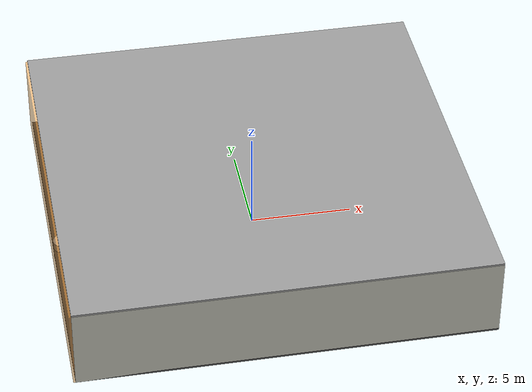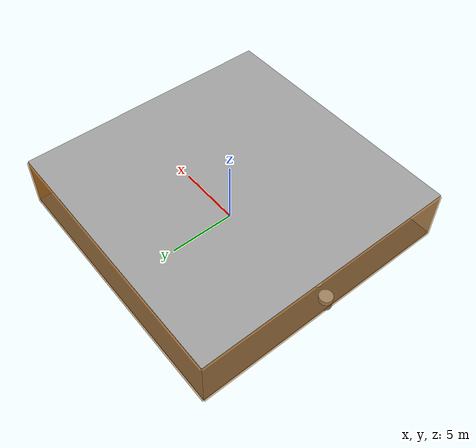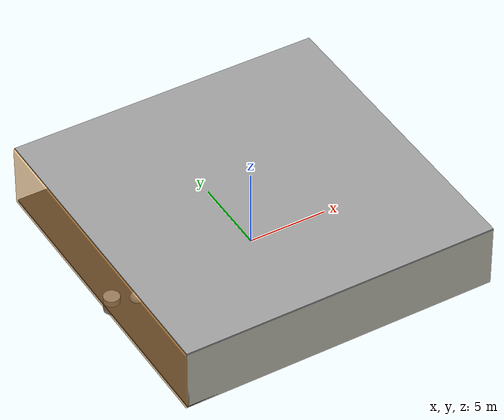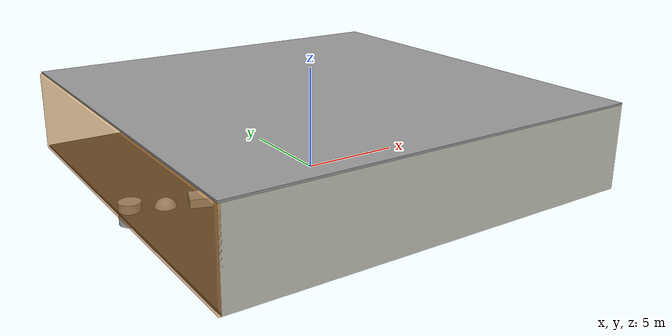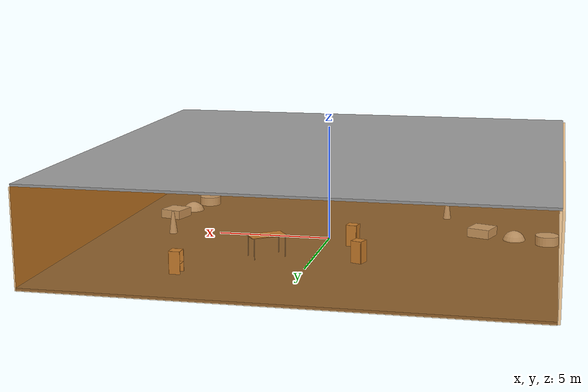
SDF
<sdf version="1.4">
 <world name="default">
  <physics type="ode">
   <max_step_size>0.001</max_step_size>
   <real_time_factor>1</real_time_factor>
   <real_time_update_rate>1000</real_time_update_rate>
   <gravity>0 0 -9.8</gravity>
  </physics>
  <scene><ambient>0.4 0.4 0.4 1</ambient><background>0.7 0.7 0.7 1</background><shadows>1</shadows></scene>
  <model name="Surrounding">
   <static>1</static>
   <link name="Ceiling">
    <collision name="Ceiling_Collision"><geometry><box><size>20 20 0.1</size></box></geometry></collision>
    <visual name="Ceiling_Visual">
     <geometry><box><size>20 20 0.1</size></box></geometry>
     <material>
      <script><uri>file://media/materials/scripts/gazebo.material</uri><name>Gazebo/GreyGradientSky</name></script>
     </material>
    </visual>
    <pose>0 0 4.05 0 0 0</pose>
   </link>
   <link name="Wall_South">
    <collision name="Wall_South_Collision">
     <geometry><box><size>20 0 4</size></box></geometry>
     <pose>0 0 2 0 -0 0</pose>
    </collision>
    <visual name="Wall_South_Visual">
     <pose>0 0 2 0 -0 0</pose>
     <geometry><box><size>20 0 4</size></box></geometry>
     <material>
      <script><uri>file://media/materials/scripts/gazebo.material</uri><name>Gazebo/PaintedWall</name></script>
     </material>
    </visual>
    <velocity_decay><linear>0</linear><angular>0</angular></velocity_decay>
    <pose>0 -10 0 0 -0 0</pose>
   </link>
   <link name="Wall_East">
    <collision name="Wall_21_Collision">
     <geometry><box><size>20 0 4</size></box></geometry>
     <pose>0 0 2 0 -0 0</pose>
    </collision>
    <visual name="Wall_21_Visual">
     <pose>0 0 2 0 -0 0</pose>
     <geometry><box><size>20 0 4</size></box></geometry>
     <material>
      <script><uri>file://media/materials/scripts/gazebo.material</uri><name>Gazebo/WoodFloor</name></script>
     </material>
    </visual>
    <velocity_decay><linear>0</linear><angular>0</angular></velocity_decay>
    <pose>10 0 0 0 -0 1.5708</pose>
   </link>
   <link name="Wall_North">
    <collision name="Wall_22_Collision">
     <geometry><box><size>20 0.2 4</size></box></geometry>
     <pose>0 0 2 0 -0 0</pose>
    </collision>
    <visual name="Wall_22_Visual">
     <pose>0 0 2 0 -0 0</pose>
     <geometry><box><size>20 0.2 4</size></box></geometry>
     <material>
      <script>
       <uri>file://media/materials/scripts/gazebo.material</uri>
       <name>Gazebo/OrangeTransparent</name>
      </script>
     </material>
    </visual>
    <velocity_decay><linear>0</linear><angular>0</angular></velocity_decay>
    <pose>0 10 0 0 -0 0</pose>
   </link>
   <link name="Wall_West">
    <collision name="Wall_23_Collision">
     <geometry><box><size>20 0.2 4</size></box></geometry>
     <pose>0 0 2 0 -0 0</pose>
    </collision>
    <visual name="Wall_23_Visual">
     <pose>0 0 2 0 -0 0</pose>
     <geometry><box><size>20 0.2 4</size></box></geometry>
     <material>
      <script>
       <uri>file://media/materials/scripts/gazebo.material</uri>
       <name>Gazebo/OrangeTransparent</name>
      </script>
     </material>
    </visual>
    <velocity_decay><linear>0</linear><angular>0</angular></velocity_decay>
    <pose>-10 0 0 0 0 -1.5708</pose>
   </link>
   <link name="Ground_link">
    <collision name="collision">
     <pose>0 0 .05 0 -0 0</pose>
     <geometry><box><size>20 20 0.1</size></box></geometry>
    </collision>
    <visual name="visual">
     <pose>0 0 .05 0 -0 0</pose>
     <geometry><box><size>20 20 0.1</size></box></geometry>
     <material>
      <script><uri>file://media/materials/scripts/gazebo.material</uri><name>Gazebo/DarkGrey</name></script>
     </material>
    </visual>
   </link>
   <static>1</static>
  </model>
  <spherical_coordinates>
   <surface_model>EARTH_WGS84</surface_model>
   <latitude_deg>0</latitude_deg>
   <longitude_deg>0</longitude_deg>
   <elevation>0</elevation>
   <heading_deg>0</heading_deg>
  </spherical_coordinates>
  <light name="lightball_0" type="diffuse">
   <diffuse>0.8 0.8 0.8 1</diffuse>
   <specular>0.2 0.2 0.2 1</specular>
   <attenuation>
    <range>100</range>
    <constant>0.7</constant>
    <linear>0.01</linear>
    <quadratic>0.001</quadratic>
   </attenuation>
   <direction>-0.5 0.1 -0.9</direction>
   <pose>2.70121040318 4.44702930406 1.81770779349 0 0 0</pose>
  </light>
  <light name="lightball_1" type="diffuse">
   <diffuse>0.8 0.8 0.8 1</diffuse>
   <specular>0.2 0.2 0.2 1</specular>
   <attenuation>
    <range>100</range>
    <constant>0.7</constant>
    <linear>0.01</linear>
    <quadratic>0.001</quadratic>
   </attenuation>
   <direction>-0.5 0.1 -0.9</direction>
   <pose>-8.41023208088 -1.29856830794 1.29867127789 0 0 0</pose>
  </light>
  <light name="lightball_2" type="diffuse">
   <diffuse>0.8 0.8 0.8 1</diffuse>
   <specular>0.2 0.2 0.2 1</specular>
   <attenuation>
    <range>100</range>
    <constant>0.7</constant>
    <linear>0.01</linear>
    <quadratic>0.001</quadratic>
   </attenuation>
   <direction>-0.5 0.1 -0.9</direction>
   <pose>2.83365623424 8.3162514891 0.553808122194 0 0 0</pose>
  </light>
  <light name="lightball_3" type="diffuse">
   <diffuse>0.8 0.8 0.8 1</diffuse>
   <specular>0.2 0.2 0.2 1</specular>
   <attenuation>
    <range>100</range>
    <constant>0.7</constant>
    <linear>0.01</linear>
    <quadratic>0.001</quadratic>
   </attenuation>
   <direction>-0.5 0.1 -0.9</direction>
   <pose>6.39930221576 2.44172671127 0.955795044731 0 0 0</pose>
  </light>
  <light name="lightball_4" type="diffuse">
   <diffuse>0.8 0.8 0.8 1</diffuse>
   <specular>0.2 0.2 0.2 1</specular>
   <attenuation>
    <range>100</range>
    <constant>0.7</constant>
    <linear>0.01</linear>
    <quadratic>0.001</quadratic>
   </attenuation>
   <direction>-0.5 0.1 -0.9</direction>
   <pose>-8.87904430144 9.73055772342 0.640016948931 0 0 0</pose>
  </light>
  <light name="lightball_5" type="diffuse">
   <diffuse>0.8 0.8 0.8 1</diffuse>
   <specular>0.2 0.2 0.2 1</specular>
   <attenuation>
    <range>100</range>
    <constant>0.7</constant>
    <linear>0.01</linear>
    <quadratic>0.001</quadratic>
   </attenuation>
   <direction>-0.5 0.1 -0.9</direction>
   <pose>-5.65534094814 7.26570047358 2.18236021596 0 0 0</pose>
  </light>
  <light name="lightball_6" type="diffuse">
   <diffuse>0.8 0.8 0.8 1</diffuse>
   <specular>0.2 0.2 0.2 1</specular>
   <attenuation>
    <range>100</range>
    <constant>0.7</constant>
    <linear>0.01</linear>
    <quadratic>0.001</quadratic>
   </attenuation>
   <direction>-0.5 0.1 -0.9</direction>
   <pose>6.52261630137 8.72338703824 3.35317188898 0 0 0</pose>
  </light>
  <light name="lightball_7" type="diffuse">
   <diffuse>0.8 0.8 0.8 1</diffuse>
   <specular>0.2 0.2 0.2 1</specular>
   <attenuation>
    <range>100</range>
    <constant>0.7</constant>
    <linear>0.01</linear>
    <quadratic>0.001</quadratic>
   </attenuation>
   <direction>-0.5 0.1 -0.9</direction>
   <pose>1.10240137869 3.62706711306 2.57425659068 0 0 0</pose>
  </light>
  <light name="lightball_8" type="diffuse">
   <diffuse>0.8 0.8 0.8 1</diffuse>
   <specular>0.2 0.2 0.2 1</specular>
   <attenuation>
    <range>100</range>
    <constant>0.7</constant>
    <linear>0.01</linear>
    <quadratic>0.001</quadratic>
   </attenuation>
   <direction>-0.5 0.1 -0.9</direction>
   <pose>-7.66869426114 8.65933894789 3.61947160214 0 0 0</pose>
  </light>
  <include>
   <uri>model://textured_shapes</uri>
   <pose>-8.06247647345 -0.931257535525 0 0 0 1.24565881932</pose>
  </include>
  <include>
   <uri>model://construction_cone</uri>
   <pose>-4.78935201278 -4.38261393255 0 0 0 2.69685719639</pose>
  </include>
  <include><uri>model://cabinet</uri><pose>-1.30120334793 1.32683621879 0 0 0 1.41709379917</pose></include>
  <include><uri>model://cabinet</uri><pose>-2.01022074541 3.90940463549 0 0 0 1.21875907166</pose></include>
  <include><uri>model://table</uri><pose>1.88464403798 3.75327090295 0 0 0 0.610438847587</pose></include>
  <include><uri>model://cabinet</uri><pose>4.74786212053 6.84081017196 0 0 0 0.000822732829315</pose></include>
  <include>
   <uri>model://textured_shapes</uri>
   <pose>7.48203408378 -3.70122385195 0 0 0 2.8715538007</pose>
  </include>
  <include>
   <uri>model://construction_cone</uri>
   <pose>6.96646936659 0.803927698881 0 0 0 0.303082520935</pose>
  </include>
 </world>
</sdf>

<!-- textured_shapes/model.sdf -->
<sdf version="1.6">
  <model name="textured_shapes">
    <pose>0 0 0.5 0 0 0</pose>
    <link name="box">
      <pose>0 -1.5 0 0 0 0</pose>
      <collision name="collision">
        <geometry>
          <box>
            <size>1 1 1</size>
          </box>
        </geometry>
      </collision>
      <visual name="visual">
        <geometry>
          <box>
            <size>1 1 1</size>
          </box>
        </geometry>
        <material>
          <script>
            <uri>model://../model_source/models/textured_shapes/materials/scripts</uri>
            <uri>model://../model_source/models/textured_shapes/materials/textures</uri>
            <name>TexturedShape/Squares</name>
          </script>
        </material>
      </visual>
    </link>
    <link name="sphere">
      <collision name="collision">
        <geometry>
          <sphere>
            <radius>0.5</radius>
          </sphere>
        </geometry>
      </collision>
      <visual name="visual">
        <geometry>
          <sphere>
            <radius>0.5</radius>
          </sphere>
        </geometry>
        <material>
          <script>
            <uri>model://../model_source/models/textured_shapes/materials/scripts</uri>
            <uri>model://../model_source/models/textured_shapes/materials/textures</uri>
            <name>TexturedShape/Squares</name>
          </script>
        </material>
      </visual>
    </link>
    <link name="cylinder">
      <pose>0 1.5 0 0 0 0</pose>
      <collision name="collision">
        <geometry>
          <cylinder>
            <radius>0.5</radius>
            <length>1</length>
          </cylinder>
        </geometry>
      </collision>
      <visual name="visual">
        <geometry>
          <cylinder>
            <radius>0.5</radius>
            <length>1</length>
          </cylinder>
        </geometry>
        <material>
          <script>
            <uri>model://../model_source/models/textured_shapes/materials/scripts</uri>
            <uri>model://../model_source/models/textured_shapes/materials/textures</uri>
            <name>TexturedShape/Squares</name>
          </script>
        </material>
      </visual>
    </link>
  </model>
</sdf>

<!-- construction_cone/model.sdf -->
<sdf version="1.5">
  <model name="Construction Cone">
    <link name="link">
      <collision name="collision">
        <geometry>
          <mesh>
            <scale>10 10 10</scale>
            <uri>file://isr-testbed/construction_cone/meshes/construction_cone.dae</uri>
          </mesh>
        </geometry>
      </collision>
      <visual name="visual">
        <geometry>
          <mesh>
            <scale>10 10 10</scale>
            <uri>file://isr-testbed/construction_cone/meshes/construction_cone.dae</uri>
          </mesh>
        </geometry>
      </visual>
    </link>
  </model>
</sdf>

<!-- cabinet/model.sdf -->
<sdf version="1.5">
  <model name="cabinet">
    <static>true</static>
    <link name="cabinet_bottom_plate">
      <inertial>
        <pose>0 0 -1 0 0 0</pose>
        <inertia>
          <ixx>2.050000</ixx>
          <ixy>0</ixy>
          <ixz>0</ixz>
          <iyy>2.050000</iyy>
          <iyz>0</iyz>
          <izz>2.050000</izz>
        </inertia>
        <mass>25.000000</mass>
      </inertial>
      <collision name="cabinet_bottom_plate_geom">
        <pose>0 0 0.010000 0 0 0</pose>
        <geometry>
          <box>
            <size>0.450000 0.450000 0.020000</size>
          </box>
        </geometry>
      </collision>
      <visual name="cabinet_bottom_plate_geom_visual">
        <pose>0 0 0.010000 0 0 0</pose>
        <geometry>
          <box>
            <size>0.450000 0.450000 0.020000</size>
          </box>
        </geometry>
        <material>
          <script>
            <uri>model://media/materials/scripts/gazebo.material</uri>
            <name>Gazebo/Wood</name>
          </script>
        </material>
      </visual>
      <collision name="cabinet_bottom_plate_geom_cabinet_back_plate">
        <pose>0.235000 0 0.510000 0 0 0</pose>
        <geometry>
          <box>
            <size>0.020000 0.450000 1.020000</size>
          </box>
        </geometry>
      </collision>
      <visual name="cabinet_bottom_plate_geom_cabinet_back_plate_visual">
        <pose>0.235000 0 0.510000 0 0 0</pose>
        <geometry>
          <box>
            <size>0.020000 0.450000 1.020000</size>
          </box>
        </geometry>
        <material>
          <script>
            <uri>model://media/materials/scripts/gazebo.material</uri>
            <name>Gazebo/Wood</name>
          </script>
        </material>
      </visual>
      <collision name="cabinet_bottom_plate_geom_cabinet_left_plate">
        <pose>0 0.235000 0.510000 0 0 0</pose>
        <geometry>
          <box>
            <size>0.450000 0.020000 1.020000</size>
          </box>
        </geometry>
      </collision>
      <visual name="cabinet_bottom_plate_geom_cabinet_left_plate_visual">
        <pose>0 0.235000 0.510000 0 0 0</pose>
        <geometry>
          <box>
            <size>0.450000 0.020000 1.020000</size>
          </box>
        </geometry>
        <material>
          <script>
            <uri>model://media/materials/scripts/gazebo.material</uri>
            <name>Gazebo/Wood</name>
          </script>
        </material>
      </visual>
      <collision name="cabinet_bottom_plate_geom_cabinet_middle_plate">
        <pose>0 0 0.510000 0 0 0</pose>
        <geometry>
          <box>
            <size>0.450000 0.450000 0.020000</size>
          </box>
        </geometry>
      </collision>
      <visual name="cabinet_bottom_plate_geom_cabinet_middle_plate_visual">
        <pose>0 0 0.510000 0 0 0</pose>
        <geometry>
          <box>
            <size>0.450000 0.450000 0.020000</size>
          </box>
        </geometry>
        <material>
          <script>
            <uri>model://media/materials/scripts/gazebo.material</uri>
            <name>Gazebo/Wood</name>
          </script>
        </material>
      </visual>
      <collision name="cabinet_bottom_plate_geom_cabinet_right_plate">
        <pose>0 -0.235000 0.510000 0 0 0</pose>
        <geometry>
          <box>
            <size>0.450000 0.020000 1.020000</size>
          </box>
        </geometry>
      </collision>
      <visual name="cabinet_bottom_plate_geom_cabinet_right_plate_visual">
        <pose>0 -0.235000 0.510000 0 0 0</pose>
        <geometry>
          <box>
            <size>0.450000 0.020000 1.020000</size>
          </box>
        </geometry>
        <material>
          <script>
            <uri>model://media/materials/scripts/gazebo.material</uri>
            <name>Gazebo/Wood</name>
          </script>
        </material>
      </visual>
      <collision name="cabinet_bottom_plate_geom_cabinet_top_plate">
        <pose>0 0 1.010000 0 0 0</pose>
        <geometry>
          <box>
            <size>0.450000 0.450000 0.020000</size>
          </box>
        </geometry>
      </collision>
      <visual name="cabinet_bottom_plate_geom_cabinet_top_plate_visual">
        <pose>0 0 1.010000 0 0 0</pose>
        <geometry>
          <box>
            <size>0.450000 0.450000 0.020000</size>
          </box>
        </geometry>
        <material>
          <script>
            <uri>model://media/materials/scripts/gazebo.material</uri>
            <name>Gazebo/Wood</name>
          </script>
        </material>
      </visual>
    </link>
  </model>
</sdf>

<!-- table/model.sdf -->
<sdf version="1.5">
  <model name="table">
    <static>true</static>
    <link name="link">
      <collision name="surface">
        <pose>0 0 1.0 0 0 0</pose>
        <geometry>
          <box>
            <size>1.5 0.8 0.03</size>
          </box>
        </geometry>
        <surface>
          <friction>
            <ode>
              <mu>0.6</mu>
              <mu2>0.6</mu2>
            </ode>
          </friction>
        </surface>
      </collision>
      <visual name="visual1">
        <pose>0 0 1.0 0 0 0</pose>
        <geometry>
          <box>
            <size>1.5 0.8 0.03</size>
          </box>
        </geometry>
        <material>
          <script>
            <uri>model://media/materials/scripts/gazebo.material</uri>
            <name>Gazebo/Wood</name>
          </script>
        </material>
      </visual>
      <collision name="front_left_leg">
        <pose>0.68 0.38 0.5 0 0 0</pose>
        <geometry>
          <cylinder>
            <radius>0.02</radius>
            <length>1.0</length>
          </cylinder>
        </geometry>
      </collision>
      <visual name="front_left_leg">
        <pose>0.68 0.38 0.5 0 0 0</pose>
        <geometry>
          <cylinder>
            <radius>0.02</radius>
            <length>1.0</length>
          </cylinder>
        </geometry>
        <material>
          <script>
            <uri>model://media/materials/scripts/gazebo.material</uri>
            <name>Gazebo/Grey</name>
          </script>
        </material>
      </visual>
      <collision name="front_right_leg">
        <pose>0.68 -0.38 0.5 0 0 0</pose>
        <geometry>
          <cylinder>
            <radius>0.02</radius>
            <length>1.0</length>
          </cylinder>
        </geometry>
      </collision>
      <visual name="front_right_leg">
        <pose>0.68 -0.38 0.5 0 0 0</pose>
        <geometry>
          <cylinder>
            <radius>0.02</radius>
            <length>1.0</length>
          </cylinder>
        </geometry>
        <material>
          <script>
            <uri>model://media/materials/scripts/gazebo.material</uri>
            <name>Gazebo/Grey</name>
          </script>
        </material>
      </visual>
      <collision name="back_right_leg">
        <pose>-0.68 -0.38 0.5 0 0 0</pose>
        <geometry>
          <cylinder>
            <radius>0.02</radius>
            <length>1.0</length>
          </cylinder>
        </geometry>
      </collision>
      <visual name="back_right_leg">
        <pose>-0.68 -0.38 0.5 0 0 0</pose>
        <geometry>
          <cylinder>
            <radius>0.02</radius>
            <length>1.0</length>
          </cylinder>
        </geometry>
        <material>
          <script>
            <uri>model://media/materials/scripts/gazebo.material</uri>
            <name>Gazebo/Grey</name>
          </script>
        </material>
      </visual>
      <collision name="back_left_leg">
        <pose>-0.68 0.38 0.5 0 0 0</pose>
        <geometry>
          <cylinder>
            <radius>0.02</radius>
            <length>1.0</length>
          </cylinder>
        </geometry>
      </collision>
      <visual name="back_left_leg">
        <pose>-0.68 0.38 0.5 0 0 0</pose>
        <geometry>
          <cylinder>
            <radius>0.02</radius>
            <length>1.0</length>
          </cylinder>
        </geometry>
        <material>
          <script>
            <uri>model://media/materials/scripts/gazebo.material</uri>
            <name>Gazebo/Grey</name>
          </script>
        </material>
      </visual>
    </link>
  </model>
</sdf>
